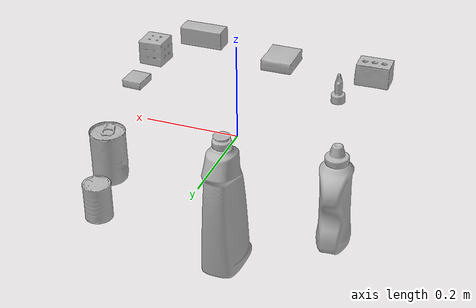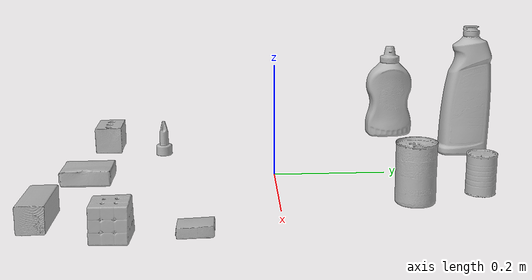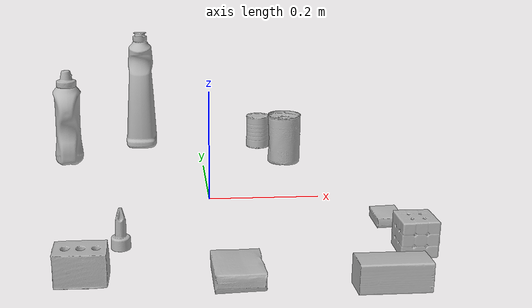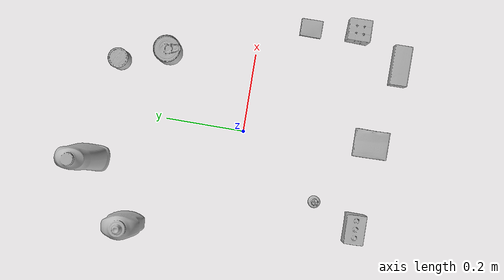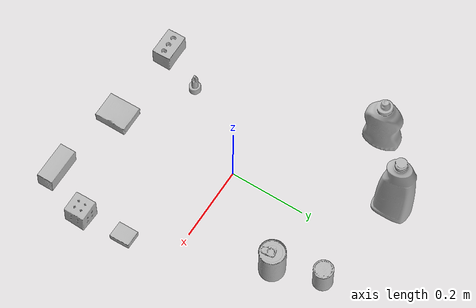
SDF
<?xml version="1.0" ?>
<sdf version="1.4">
  <world name="default">
    <light name="light1" type="point">
      <pose>0 0 1 0 0 0</pose>
      <diffuse>3 3 3 1</diffuse>
      <specular>3 3 3 1</specular>
    </light>
    <light name="light2" type="point">
      <pose>0 0.5 2 0 0 0</pose>
      <diffuse>1 1 1 1</diffuse>
      <specular>1 1 1 1</specular>
    </light>
    <light name="light3" type="point">
      <pose>0 0.5 2 0 0 0</pose>
      <diffuse>3 3 3 1</diffuse>
      <specular>3 3 3 1</specular>
    </light>
    <scene>
      <ambient>0.7 0.7 0.7</ambient>
    </scene>
    <model name="bottle1">
      <link name="link_bottle1">
        <collision name="default">
          <geometry>
            <mesh>
              <uri>model://bleach_cleanser/collision_meshes/collision.obj</uri>
              <scale>1.0 1.0 1.0</scale>
            </mesh>
          </geometry>
          <surface>
            <friction>
              <ode>
                <mu>0.5</mu>
                <mu2>0.5</mu2>
              </ode>
            </friction>
          </surface>
        </collision>
        <visual name="default">
          <geometry>
            <mesh>
              <uri>model://bleach_cleanser/visual_meshes/visual.dae</uri>
              <scale>1.0 1.0 1.0</scale>
            </mesh>
          </geometry>
        </visual>
        <inertial>
          <mass>1.1050143241882324</mass>
          <pose>0.00012193183647468686 0.0037838828284293413 -0.02442161738872528 -0.07381670616137478 0.0004201160282461273 -0.006875061809122935</pose>
          <inertia>
            <ixx>0.0053782654</ixx>
            <iyy>0.005011756</iyy>
            <izz>0.00091954356</izz>
            <ixy>0</ixy>
            <ixz>0</ixz>
            <iyz>0</iyz>
          </inertia>
        </inertial>
      </link>
      <pose>-0.1298193633556366 0.3798437714576721 0.12578418850898743 -0.0002055635083742347 1.2018396586620903e-05 -0.0027445150269990145</pose>
    </model>
    <model name="bottle2">
      <link name="link_bottle2">
        <collision name="default">
          <geometry>
            <mesh>
              <uri>model://mustard_bottle/collision_meshes/collision.obj</uri>
              <scale>1.0 1.0 1.0</scale>
            </mesh>
          </geometry>
          <surface>
            <friction>
              <ode>
                <mu>0.5</mu>
                <mu2>0.5</mu2>
              </ode>
            </friction>
          </surface>
        </collision>
        <visual name="default">
          <geometry>
            <mesh>
              <uri>model://mustard_bottle/visual_meshes/visual.dae</uri>
              <scale>1.0 1.0 1.0</scale>
            </mesh>
          </geometry>
        </visual>
        <inertial>
          <mass>0.622285008430481</mass>
          <pose>0.0005032453336752951 -0.0001564739941386506 -0.0174757931381464 0.0004182326458762318 0.0009465782998157723 0.024853714910341117</pose>
          <inertia>
            <ixx>0.0017280002</ixx>
            <iyy>0.0015161741</iyy>
            <izz>0.00045541534</izz>
            <ixy>0</ixy>
            <ixz>0</ixz>
            <iyz>0</iyz>
          </inertia>
        </inertial>
      </link>
      <pose>-0.28076210618019104 0.25974932312965393 0.09615197777748108 1.3133699284650097e-05 1.402279275125708e-05 0.0829223337430554</pose>
    </model>
    <model name="toy1">
      <link name="link_toy1">
        <collision name="default">
          <geometry>
            <mesh>
              <uri>model://foam_brick/collision_meshes/collision.obj</uri>
              <scale>1.0 1.0 1.0</scale>
            </mesh>
          </geometry>
          <surface>
            <friction>
              <ode>
                <mu>0.5</mu>
                <mu2>0.5</mu2>
              </ode>
            </friction>
          </surface>
        </collision>
        <visual name="default">
          <geometry>
            <mesh>
              <uri>model://foam_brick/visual_meshes/visual.dae</uri>
              <scale>1.0 1.0 1.0</scale>
            </mesh>
          </geometry>
        </visual>
        <inertial>
          <mass>0.1664208173751831</mass>
          <pose>-0.00025224717683158815 0.0003458438441157341 -0.00025321010616607964 -0.2940189404221327 0.017274440573450563 -0.0007449871782747126</pose>
          <inertia>
            <ixx>7.269573e-05</ixx>
            <iyy>0.00011606247</iyy>
            <izz>0.000117537464</izz>
            <ixy>0</ixy>
            <ixz>0</ixz>
            <iyz>0</iyz>
          </inertia>
        </inertial>
      </link>
      <pose>-0.1997309774160385 -0.32058945298194885 0.025917528197169304 0.013816559745453287 0.004276195944637587 0.013015926045700461</pose>
    </model>
    <model name="toy2">
      <link name="link_toy2">
        <collision name="default">
          <geometry>
            <mesh>
              <uri>model://d_toy_airplane/collision_meshes/collision.obj</uri>
              <scale>1.0 1.0 1.0</scale>
            </mesh>
          </geometry>
          <surface>
            <friction>
              <ode>
                <mu>0.5</mu>
                <mu2>0.5</mu2>
              </ode>
            </friction>
          </surface>
        </collision>
        <visual name="default">
          <geometry>
            <mesh>
              <uri>model://d_toy_airplane/visual_meshes/visual.dae</uri>
              <scale>1.0 1.0 1.0</scale>
            </mesh>
          </geometry>
        </visual>
        <inertial>
          <mass>0.021938346326351166</mass>
          <pose>9.410325583303347e-05 -5.8093231928069144e-05 -0.01172809861600399 0.0002669142468379238 0.0046790018194854816 0.5194488187392164</pose>
          <inertia>
            <ixx>6.5766894e-06</ixx>
            <iyy>6.581649e-06</iyy>
            <izz>1.9855454e-06</izz>
            <ixy>0</ixy>
            <ixz>0</ixz>
            <iyz>0</iyz>
          </inertia>
        </inertial>
      </link>
      <pose>-0.14999592304229736 -0.20996874570846558 0.03333889693021774 3.2714239020824846e-05 -0.00011505686951632414 0.06753066460080884</pose>
    </model>
    <model name="can1">
      <link name="link_can1">
        <collision name="default">
          <geometry>
            <mesh>
              <uri>model://tomato_soup_can/collision_meshes/collision.obj</uri>
              <scale>1.0 1.0 1.0</scale>
            </mesh>
          </geometry>
          <surface>
            <friction>
              <ode>
                <mu>0.5</mu>
                <mu2>0.5</mu2>
              </ode>
            </friction>
          </surface>
        </collision>
        <visual name="default">
          <geometry>
            <mesh>
              <uri>model://tomato_soup_can/visual_meshes/visual.dae</uri>
              <scale>1.0 1.0 1.0</scale>
            </mesh>
          </geometry>
        </visual>
        <inertial>
          <mass>0.39673706889152527</mass>
          <pose>0.00012652271834667772 0.00010805520287249237 -0.0017973972717300057 0.007020066809275346 0.000422998323222239 -0.009903841103285913</pose>
          <inertia>
            <ixx>0.00043498844</ixx>
            <iyy>0.00043247454</iyy>
            <izz>0.00022545052</izz>
            <ixy>0</ixy>
            <ixz>0</ixz>
            <iyz>0</iyz>
          </inertia>
        </inertial>
      </link>
      <pose>0.1699461191892624 0.22000491619110107 0.051274023950099945 -6.190835310618314e-07 -7.493250751886254e-07 -0.05283564716067197</pose>
    </model>
    <model name="can2">
      <link name="link_can2">
        <collision name="default">
          <geometry>
            <mesh>
              <uri>model://master_chef_can/collision_meshes/collision.obj</uri>
              <scale>0.5 0.5 0.5</scale>
            </mesh>
          </geometry>
          <surface>
            <friction>
              <ode>
                <mu>0.5</mu>
                <mu2>0.5</mu2>
              </ode>
            </friction>
          </surface>
        </collision>
        <visual name="default">
          <geometry>
            <mesh>
              <uri>model://master_chef_can/visual_meshes/visual.dae</uri>
              <scale>0.5 0.5 0.5</scale>
            </mesh>
          </geometry>
        </visual>
        <inertial>
          <mass>0.08835740387439728</mass>
          <pose>-4.6619654312962666e-05 1.3926853625889635e-07 -5.079947004560381e-05 -0.0017995147102642629 0.0006479189020740588 -0.6102650934471076</pose>
          <inertia>
            <ixx>5.1859814e-05</ixx>
            <iyy>5.1478128e-05</iyy>
            <izz>2.8656508e-05</izz>
            <ixy>0</ixy>
            <ixz>0</ixz>
            <iyz>0</iyz>
          </inertia>
        </inertial>
      </link>
      <pose>0.13011382520198822 0.34009525179862976 0.035301998257637024 -1.4635889167890113e-06 -7.288375222157485e-07 0.09278908880923334</pose>
    </model>
    <model name="box1">
      <link name="link_box1">
        <collision name="default">
          <geometry>
            <mesh>
              <uri>model://wood_block/collision_meshes/collision.obj</uri>
              <scale>0.5 0.5 0.5</scale>
            </mesh>
          </geometry>
          <surface>
            <friction>
              <ode>
                <mu>0.5</mu>
                <mu2>0.5</mu2>
              </ode>
            </friction>
          </surface>
        </collision>
        <visual name="default">
          <geometry>
            <mesh>
              <uri>model://wood_block/visual_meshes/visual.dae</uri>
              <scale>0.5 0.5 0.5</scale>
            </mesh>
          </geometry>
        </visual>
        <inertial>
          <mass>0.15377527475357056</mass>
          <pose>-2.9066577553749084e-06 -0.000285404734313488 0.00013204291462898254 -0.05220825990774677 -0.0051926953585221414 -0.0068613782788382646</pose>
          <inertia>
            <ixx>5.1443654e-05</ixx>
            <iyy>0.00016251049</iyy>
            <izz>0.00016190263</izz>
            <ixy>0</ixy>
            <ixz>0</ixz>
            <iyz>0</iyz>
          </inertia>
        </inertial>
      </link>
      <pose>0.22994162142276764 -0.3694343566894531 0.022629257291555405 -0.005208508438909436 0.005718718826331717 0.0053048563017787</pose>
    </model>
    <model name="box2">
      <link name="link_box2">
        <collision name="default">
          <geometry>
            <mesh>
              <uri>model://rubiks_cube/collision_meshes/collision.obj</uri>
              <scale>1.0 1.0 1.0</scale>
            </mesh>
          </geometry>
          <surface>
            <friction>
              <ode>
                <mu>0.5</mu>
                <mu2>0.5</mu2>
              </ode>
            </friction>
          </surface>
        </collision>
        <visual name="default">
          <geometry>
            <mesh>
              <uri>model://rubiks_cube/visual_meshes/visual.dae</uri>
              <scale>1.0 1.0 1.0</scale>
            </mesh>
          </geometry>
        </visual>
        <inertial>
          <mass>0.2856966555118561</mass>
          <pose>2.6721041649580002e-05 5.2569666877388954e-05 -7.264316082000732e-06 -0.05467209736319516 -0.09813912050272719 -0.034455106160143086</pose>
          <inertia>
            <ixx>0.00015786657</ixx>
            <iyy>0.00015713037</iyy>
            <izz>0.00015917476</izz>
            <ixy>0</ixy>
            <ixz>0</ixz>
            <iyz>0</iyz>
          </inertia>
        </inertial>
      </link>
      <pose>0.29993152618408203 -0.2502274811267853 0.028678996488451958 -4.039611659938038e-08 -1.6298163537487684e-09 -9.150244292305181e-08</pose>
    </model>
    <model name="box3">
      <link name="link_box3">
        <collision name="default">
          <geometry>
            <mesh>
              <uri>model://gelatin_box/collision_meshes/collision.obj</uri>
              <scale>1.0 1.0 1.0</scale>
            </mesh>
          </geometry>
          <surface>
            <friction>
              <ode>
                <mu>0.5</mu>
                <mu2>0.5</mu2>
              </ode>
            </friction>
          </surface>
        </collision>
        <visual name="default">
          <geometry>
            <mesh>
              <uri>model://gelatin_box/visual_meshes/visual.dae</uri>
              <scale>1.0 1.0 1.0</scale>
            </mesh>
          </geometry>
        </visual>
        <inertial>
          <mass>0.24612535536289215</mass>
          <pose>0.0004319618456065655 0.00011156871914863586 -0.00036403213744051754 -0.0010503719772071295 -0.004755818223732799 0.016440561334178715</pose>
          <inertia>
            <ixx>0.00017374444</ixx>
            <iyy>0.00012410474</iyy>
            <izz>0.00026447774</izz>
            <ixy>0</ixy>
            <ixz>0</ixz>
            <iyz>0</iyz>
          </inertia>
        </inertial>
      </link>
      <pose>0.01995125785470009 -0.33007165789604187 0.015168312937021255 0.0055975041687983396 -0.007304572587451773 6.363505157735965e-06</pose>
    </model>
    <model name="box4">
      <link name="link_box4">
        <collision name="default">
          <geometry>
            <mesh>
              <uri>model://pudding_box/collision_meshes/collision.obj</uri>
              <scale>0.5 0.5 0.5</scale>
            </mesh>
          </geometry>
          <surface>
            <friction>
              <ode>
                <mu>0.5</mu>
                <mu2>0.5</mu2>
              </ode>
            </friction>
          </surface>
        </collision>
        <visual name="default">
          <geometry>
            <mesh>
              <uri>model://pudding_box/visual_meshes/visual.dae</uri>
              <scale>0.5 0.5 0.5</scale>
            </mesh>
          </geometry>
        </visual>
        <inertial>
          <mass>0.025328172370791435</mass>
          <pose>0.00024474109522998333 0.00040339428232982755 -0.0002594413817860186 0.00521310085836893 -0.006603797787762854 0.020079828890944847</pose>
          <inertia>
            <ixx>7.15805e-06</ixx>
            <iyy>4.8159864e-06</iyy>
            <izz>1.0570731e-05</izz>
            <ixy>0</ixy>
            <ixz>0</ixz>
            <iyz>0</iyz>
          </inertia>
        </inertial>
      </link>
      <pose>0.28974130749702454 -0.13025209307670593 0.009862903505563736 0.02234865403216929 -0.011391661875274718 -9.45107841664765e-05</pose>
    </model>
  </world>
</sdf>
